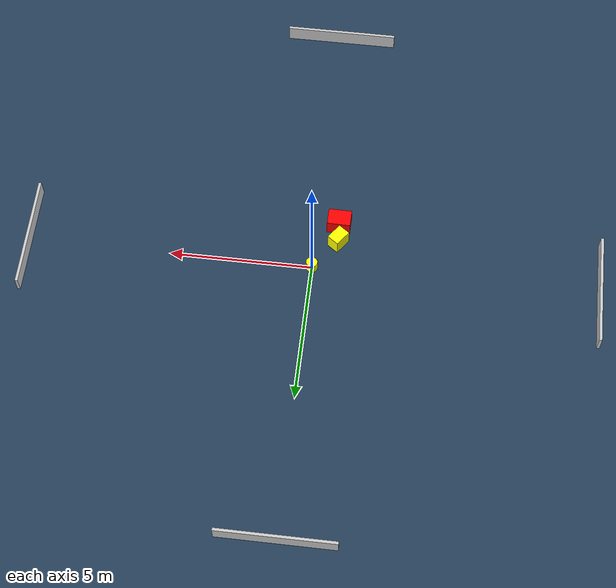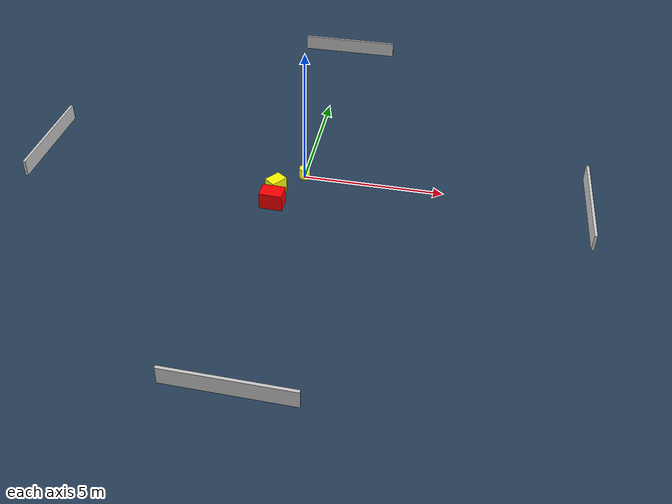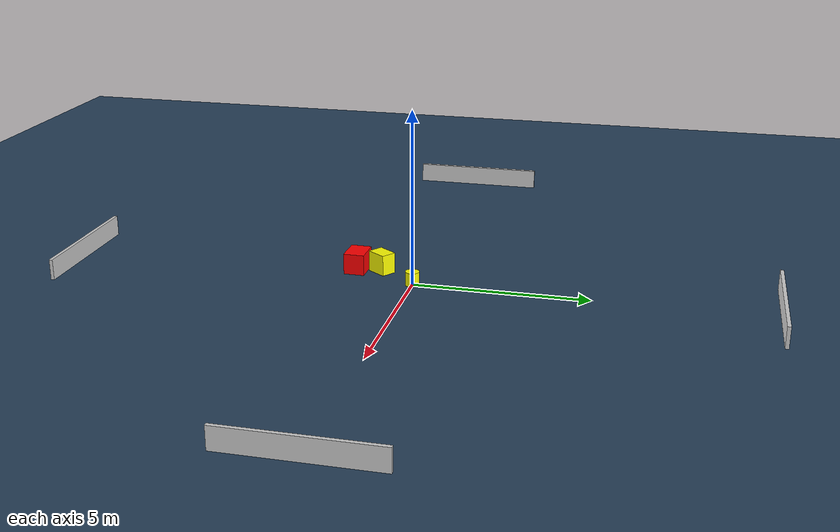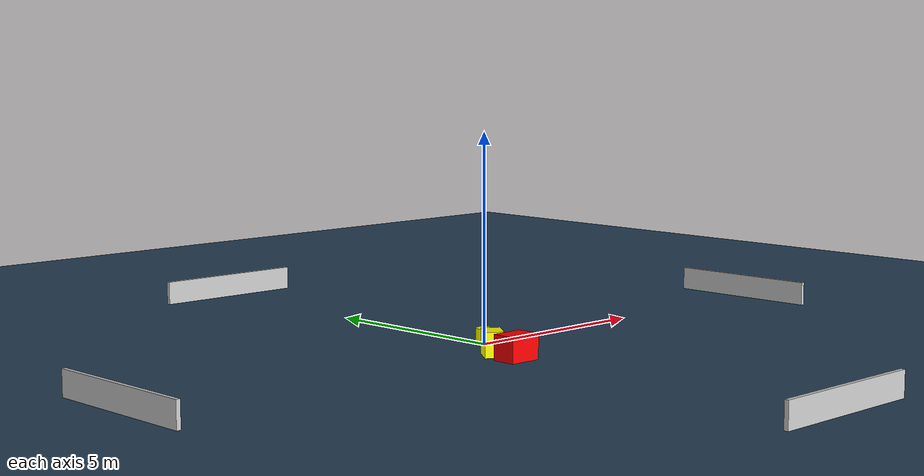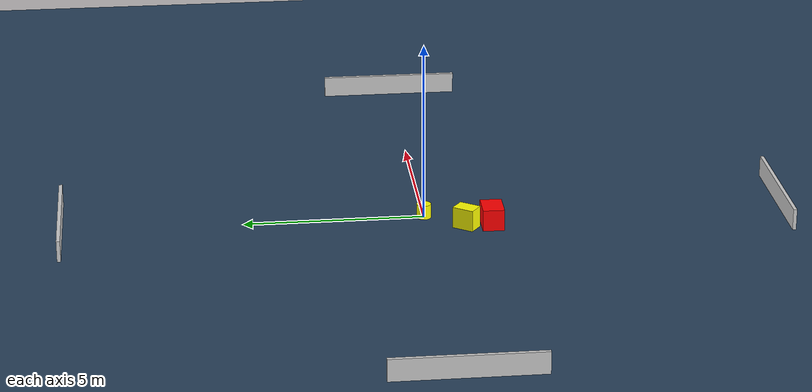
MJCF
<?xml version="1.0" ?>
<mujoco model="generated_environment">
  <option timestep="0.01" integrator="RK4" cone="elliptic"/>
  <default>
    <geom density="1"/>
  </default>
  <asset>
    <texture builtin="gradient" height="3072" name="skybox" rgb1="0.3 0.5 0.7" rgb2="0 0 0" type="skybox" width="512"/>
    <texture builtin="checker" height="300" name="groundplane" rgb1="0.2 0.3 0.4" rgb2="0.1 0.2 0.3" type="2d" width="300"/>
    <material name="groundplane" reflectance="0.2" texrepeat="5 5" texture="groundplane"/>
  </asset>
  <worldbody>
    <light dir="0 0 -1" directional="true" pos="0 0 1.5"/>
    <geom condim="3" friction="0.5 0.005 0.001" material="groundplane" name="floor" pos="0 0 0" size="0 0 0.05" type="plane"/>
    <body name="walls">
      <geom name="wall_1" condim="4" pos="-10.0 0.0 0.3" rgba="0.800000011920929 0.800000011920929 0.800000011920929 1.0" size="0.05 2.0 0.3" type="box"/>
      <geom name="wall_2" condim="4" pos="10.0 0.0 0.3" rgba="0.800000011920929 0.800000011920929 0.800000011920929 1.0" size="0.05 2.0 0.3" type="box"/>
      <geom name="wall_3" condim="4" pos="0.0 -10.0 0.3" rgba="0.800000011920929 0.800000011920929 0.800000011920929 1.0" size="2.0 0.05 0.3" type="box"/>
      <geom name="wall_4" condim="4" pos="0.0 10.0 0.3" rgba="0.800000011920929 0.800000011920929 0.800000011920929 1.0" size="2.0 0.05 0.3" type="box"/>
    </body>
    <body name="robot">
      <joint name="joint_x" type="slide" pos="0 0 0" axis="1 0 0"/>
      <joint name="joint_y" type="slide" pos="0 0 0" axis="0 1 0"/>
      <geom name="robot" type="cylinder" pos="0.0 0.0 0.2" size="0.2 0.2 0.0" mass="5.0" friction="1.0 0.005 0.0001" condim="4" rgba="1.0 1.0 0.0 1.0"/>
    </body>
    <body name="obstacle_1_movable">
      <geom name="obstacle_1_movable" condim="4" pos="-0.815533808824229 -1.0900316192559436 0.3" euler="0 0 234.10977726872142" friction="0.0 0.005 0.001" rgba="1.0 1.0 0.0 1.0" size="0.308297675678999 0.22421993324492367 0.3" type="box" mass="0.1"/>
      <joint type="free"/>
    </body>
    <body name="obstacle_2_static">
      <geom name="obstacle_2_static" condim="4" pos="-0.7747520883001693 -1.8048873673087615 0.3" euler="0 0 178.90285785873888" friction="0.0 0.005 0.001" rgba="1.0 0.0 0.0 1.0" size="0.4063006254354418 0.2980225115107522 0.3" type="box"/>
    </body>
  </worldbody>
  <actuator>
    <motor name="actuator_x" joint="joint_x" gear="1" ctrlrange="-1 1"/>
    <motor name="actuator_y" joint="joint_y" gear="1" ctrlrange="-1 1"/>
  </actuator>
</mujoco>
